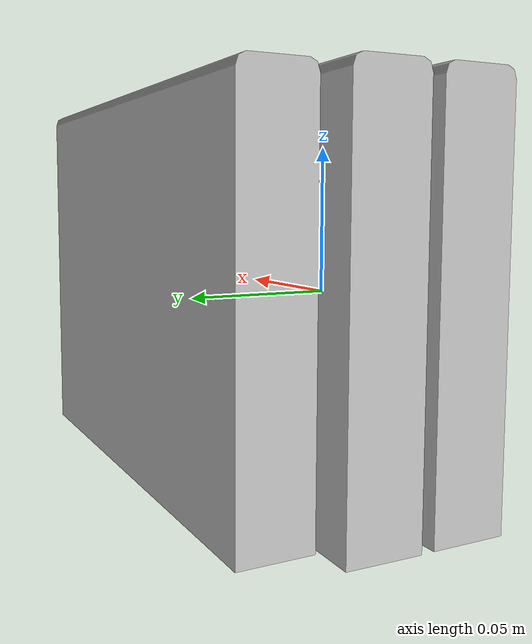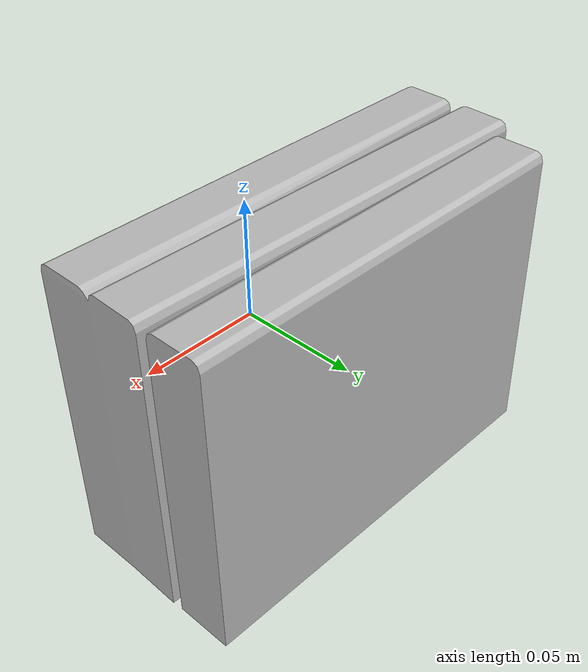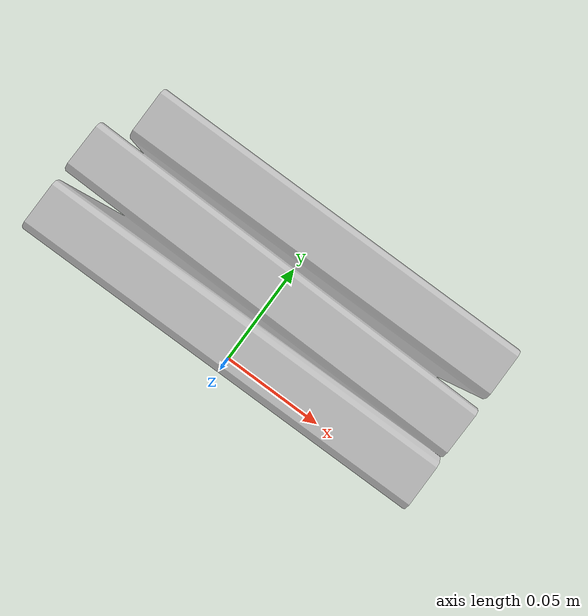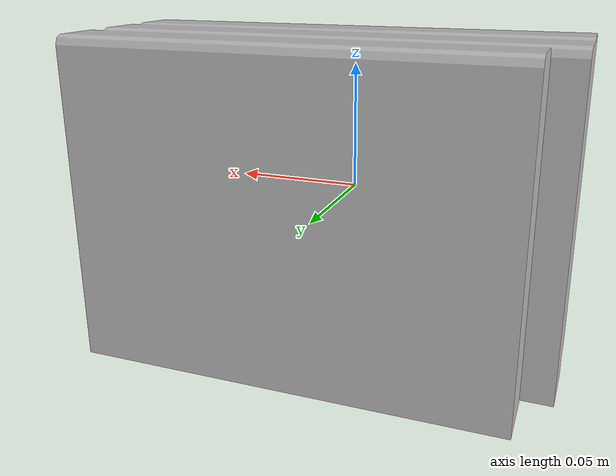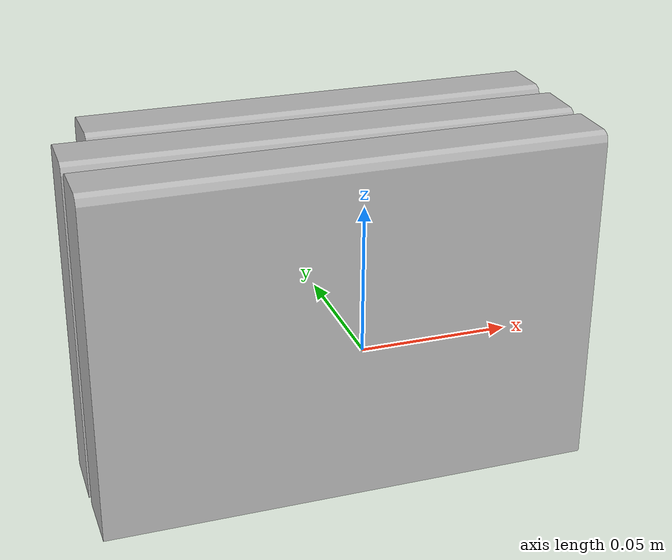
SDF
<?xml version="1.0" ?>
<sdf version="1.4">
  <model name="shelf2_book2_h1">
    <link name="body">
      <pose>0 0 0 0 0 0</pose>
      <inertial>
        <pose>  -0.000556   0.035730   0.003919 0 0 0</pose>
        <mass>0.5</mass>
        <inertia>
          <ixx>0.01</ixx>
          <ixy>0</ixy>
          <ixz>0</ixz>
          <iyy>0.01</iyy>
          <iyz>0</iyz>
          <izz>0.01</izz>
        </inertia>
      </inertial>
      <collision name="collision">
        <geometry>
          <mesh>
            <uri>model://bookshelf/shelf2_items/book2_h1/book2_h1.dae</uri>
          </mesh>
        </geometry>
      </collision>
      <visual name="visual">
        <geometry>
          <mesh>
            <uri>model://bookshelf/shelf2_items/book2_h1/book2_h1.dae</uri>
          </mesh>
        </geometry>
      </visual>
    </link>
  </model>
</sdf>
